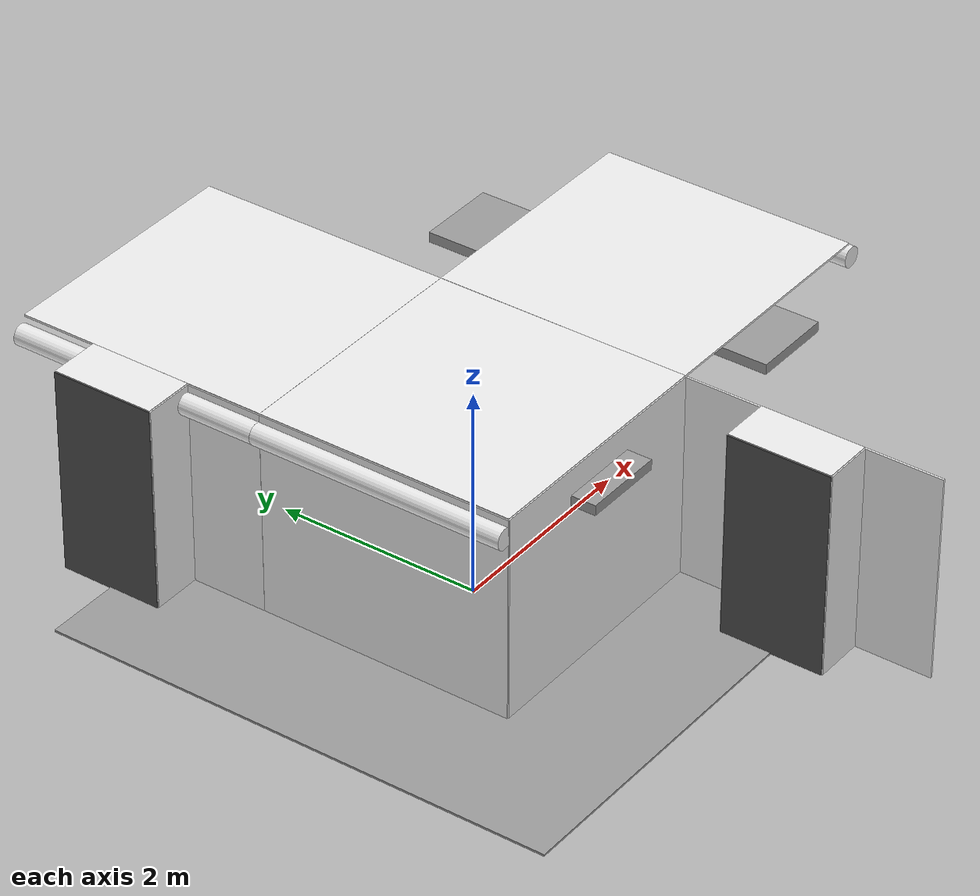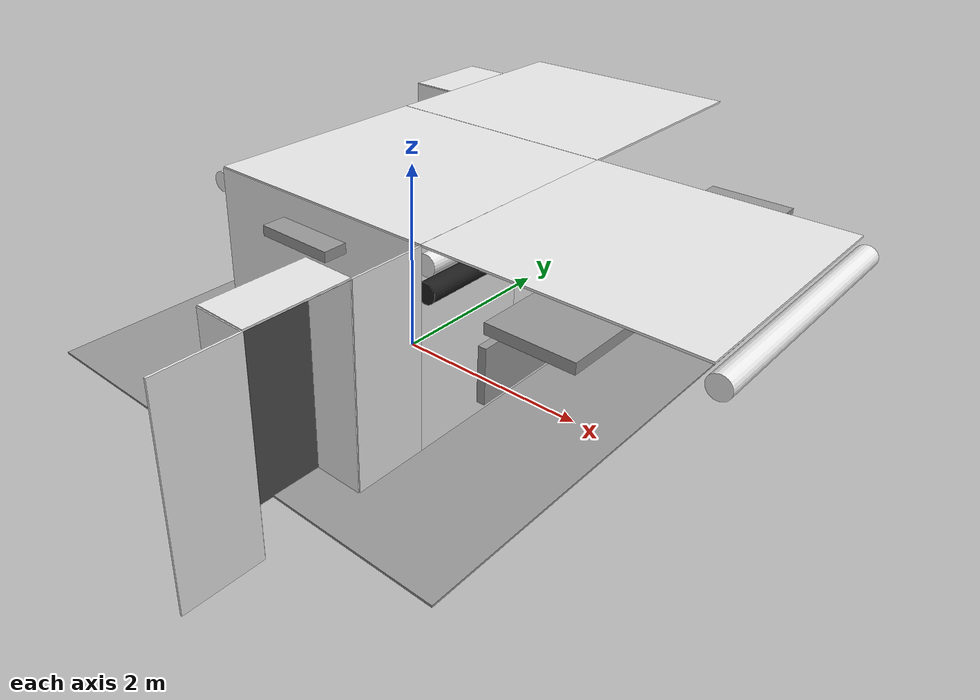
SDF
<sdf version="1.6">
 <world name="default">
  <model name="wall_back_0_0_0_0">
   <static>1</static>
   <pose>0.0 -1.25 1.0 0.0 0.0 0.0</pose>
   <link name="link">
    <collision name="collision"><geometry><box><size>2.5 0.02 2.0</size></box></geometry></collision>
    <visual name="visual">
     <material>
      <script><name>Gazebo/White</name><uri>file://media/materials/scripts/gazebo.material</uri></script>
     </material>
     <geometry><box><size>2.5 0.02 2.0</size></box></geometry>
    </visual>
   </link>
  </model>
  <model name="wall_right_0_0_0_0">
   <static>1</static>
   <pose>1.25 0.0 1.0 0.0 0.0 1.57</pose>
   <link name="link">
    <collision name="collision"><geometry><box><size>2.5 0.02 2.0</size></box></geometry></collision>
    <visual name="visual">
     <material>
      <script><name>Gazebo/White</name><uri>file://media/materials/scripts/gazebo.material</uri></script>
     </material>
     <geometry><box><size>2.5 0.02 2.0</size></box></geometry>
    </visual>
   </link>
  </model>
  <model name="wall_left_0_0_0_0">
   <static>1</static>
   <pose>-1.25 0.0 1.0 0.0 0.0 1.57</pose>
   <link name="link">
    <collision name="collision"><geometry><box><size>2.5 0.02 2.0</size></box></geometry></collision>
    <visual name="visual">
     <material>
      <script><name>Gazebo/White</name><uri>file://media/materials/scripts/gazebo.material</uri></script>
     </material>
     <geometry><box><size>2.5 0.02 2.0</size></box></geometry>
    </visual>
   </link>
  </model>
  <model name="wall_top_0_0_0_0">
   <static>1</static>
   <pose>0.0 0.0 2.0 1.57 0.0 0.0</pose>
   <link name="link">
    <collision name="collision"><geometry><box><size>2.5 0.02 2.5</size></box></geometry></collision>
    <visual name="visual">
     <material>
      <script><name>Gazebo/White</name><uri>file://media/materials/scripts/gazebo.material</uri></script>
     </material>
     <geometry><box><size>2.5 0.02 2.5</size></box></geometry>
    </visual>
   </link>
  </model>
  <model name="ceiling_1_0_0_0_0">
   <pose>0.0 0.0 1.7 0.0 0.0 0.0</pose>
   <link name="link_1">
    <visual name="visual">
     <geometry><box><size>0.8 1 0.1</size></box></geometry>
     <material>
      <script><uri>file://media/materials/scripts/gazebo.material</uri><name>Gazebo/Grey</name></script>
     </material>
    </visual>
    <collision name="collision"><geometry><box><size>0.8 1 0.1</size></box></geometry></collision>
   </link>
   <static>1</static>
  </model>
  <model name="ceiling_1_0_0_1_0">
   <pose>0.0 -1.0 1.7 0.0 0.0 0.0</pose>
   <link name="link_1">
    <visual name="visual">
     <geometry><box><size>0.8 1 0.1</size></box></geometry>
     <material>
      <script><uri>file://media/materials/scripts/gazebo.material</uri><name>Gazebo/Grey</name></script>
     </material>
    </visual>
    <collision name="collision"><geometry><box><size>0.8 1 0.1</size></box></geometry></collision>
   </link>
   <static>1</static>
  </model>
  <model name="ceiling_1_0_0_2_0">
   <pose>0.0 1.0 1.7 0.0 0.0 0.0</pose>
   <link name="link_1">
    <visual name="visual">
     <geometry><box><size>0.8 1 0.1</size></box></geometry>
     <material>
      <script><uri>file://media/materials/scripts/gazebo.material</uri><name>Gazebo/Grey</name></script>
     </material>
    </visual>
    <collision name="collision"><geometry><box><size>0.8 1 0.1</size></box></geometry></collision>
   </link>
   <static>1</static>
  </model>
  <model name="white_pipe_left_0_0_0_0">
   <static>1</static>
   <pose>0.0 0.0 1.84 0.0 0.0 0.0</pose>
   <link name="link_0">
    <visual name="visual">
     <pose>-1.3 0 0 1.57 0 0</pose>
     <geometry><cylinder><radius>0.1</radius><length>2.5</length></cylinder></geometry>
     <material>
      <script><uri>file://media/materials/scripts/gazebo.material</uri><name>Gazebo/White</name></script>
     </material>
    </visual>
    <collision name="collision">
     <pose>-1.3 0 0 1.57 0 0</pose>
     <geometry><cylinder><radius>0.1</radius><length>2.5</length></cylinder></geometry>
    </collision>
   </link>
  </model>
  <model name="white_pipe_right_0_0_0_0">
   <static>1</static>
   <pose>0.0 0.0 1.84 0.0 0.0 0.0</pose>
   <link name="link_0">
    <visual name="visual">
     <pose>1.3 0 0 1.57 0 0</pose>
     <geometry><cylinder><radius>0.1</radius><length>2.5</length></cylinder></geometry>
     <material>
      <script><uri>file://media/materials/scripts/gazebo.material</uri><name>Gazebo/White</name></script>
     </material>
    </visual>
    <collision name="collision">
     <pose>1.3 0 0 1.57 0 0</pose>
     <geometry><cylinder><radius>0.1</radius><length>2.5</length></cylinder></geometry>
    </collision>
   </link>
  </model>
  <model name="black_pipe_right_0_0_0_0">
   <static>1</static>
   <pose>0.0 0.0 1.84 0.0 0.0 0.0</pose>
   <link name="link_0">
    <visual name="visual">
     <pose>1.3 0 -0.25 1.57 0 0</pose>
     <geometry><cylinder><radius>0.1</radius><length>2.5</length></cylinder></geometry>
     <material>
      <script><uri>file://media/materials/scripts/gazebo.material</uri><name>Gazebo/Black</name></script>
     </material>
    </visual>
    <collision name="collision">
     <pose>1.3 0 -0.25 1.57 0 0</pose>
     <geometry><cylinder><radius>0.1</radius><length>2.5</length></cylinder></geometry>
    </collision>
   </link>
  </model>
  <model name="grey_pipe_right_0_0_0_0">
   <static>1</static>
   <pose>0.0 0.0 1.84 0.0 0.0 0.0</pose>
   <link name="link_0">
    <visual name="visual">
     <pose>0.7 0 0 1.57 0 0</pose>
     <geometry><cylinder><radius>0.02</radius><length>2.5</length></cylinder></geometry>
     <material>
      <script><uri>file://media/materials/scripts/gazebo.material</uri><name>Gazebo/Grey</name></script>
     </material>
    </visual>
    <collision name="collision">
     <pose>0.7 0 0 1.57 0 0</pose>
     <geometry><cylinder><radius>0.02</radius><length>2.5</length></cylinder></geometry>
    </collision>
   </link>
  </model>
  <model name="red_pipe_right_0_0_0_0">
   <static>1</static>
   <pose>0.0 0.0 1.84 0.0 0.0 0.0</pose>
   <link name="link_0">
    <visual name="visual">
     <pose>0.85 0 0 1.57 0 0</pose>
     <geometry><cylinder><radius>0.02</radius><length>2.5</length></cylinder></geometry>
     <material>
      <script><uri>file://media/materials/scripts/gazebo.material</uri><name>Gazebo/Red</name></script>
     </material>
    </visual>
    <collision name="collision">
     <pose>0.85 0 0 1.57 0 0</pose>
     <geometry><cylinder><radius>0.02</radius><length>2.5</length></cylinder></geometry>
    </collision>
   </link>
  </model>
  <model name="blue_pipe_right_0_0_0_0">
   <static>1</static>
   <pose>0.0 0.0 1.84 0.0 0.0 0.0</pose>
   <link name="link_0">
    <visual name="visual">
     <pose>1 0 0 1.57 0 0</pose>
     <geometry><cylinder><radius>0.02</radius><length>2.5</length></cylinder></geometry>
     <material>
      <script><uri>file://media/materials/scripts/gazebo.material</uri><name>Gazebo/Blue</name></script>
     </material>
    </visual>
    <collision name="collision">
     <pose>1 0 0 1.57 0 0</pose>
     <geometry><cylinder><radius>0.02</radius><length>2.5</length></cylinder></geometry>
    </collision>
   </link>
  </model>
  <model name="wall_bottom_0_0_0_0">
   <static>1</static>
   <link name="link">
    <collision name="collision"><geometry><box><size>5.0 5.0 0.02</size></box></geometry></collision>
    <visual name="visual">
     <material>
      <script><name>Gazebo/Grey</name><uri>file://media/materials/scripts/gazebo.material</uri></script>
     </material>
     <geometry><box><size>5.0 5.0 0.02</size></box></geometry>
    </visual>
   </link>
  </model>
  <model name="wall_top_0_1_0_2">
   <static>1</static>
   <pose>0.0 2.5 2.0 1.57 0.0 0.0</pose>
   <link name="link">
    <collision name="collision"><geometry><box><size>2.5 0.02 2.5</size></box></geometry></collision>
    <visual name="visual">
     <material>
      <script><name>Gazebo/White</name><uri>file://media/materials/scripts/gazebo.material</uri></script>
     </material>
     <geometry><box><size>2.5 0.02 2.5</size></box></geometry>
    </visual>
   </link>
  </model>
  <model name="ceiling_1_0_1_0_2">
   <pose>0.0 1.5 1.7 0.0 0.0 0.0</pose>
   <link name="link_1">
    <visual name="visual">
     <geometry><box><size>0.8 1 0.1</size></box></geometry>
     <material>
      <script><uri>file://media/materials/scripts/gazebo.material</uri><name>Gazebo/Grey</name></script>
     </material>
    </visual>
    <collision name="collision"><geometry><box><size>0.8 1 0.1</size></box></geometry></collision>
   </link>
   <static>1</static>
  </model>
  <model name="white_pipe_left_0_1_0_2">
   <static>1</static>
   <pose>0.0 2.5 1.84 0.0 0.0 0.0</pose>
   <link name="link_0">
    <visual name="visual">
     <pose>-1.3 0 0 1.57 0 0</pose>
     <geometry><cylinder><radius>0.1</radius><length>2.5</length></cylinder></geometry>
     <material>
      <script><uri>file://media/materials/scripts/gazebo.material</uri><name>Gazebo/White</name></script>
     </material>
    </visual>
    <collision name="collision">
     <pose>-1.3 0 0 1.57 0 0</pose>
     <geometry><cylinder><radius>0.1</radius><length>2.5</length></cylinder></geometry>
    </collision>
   </link>
  </model>
  <model name="wall_left_front_right_0_1_0_2">
   <static>1</static>
   <pose>-1.25 1.625 1.0 0.0 0.0 1.57</pose>
   <link name="link">
    <collision name="collision"><geometry><box><size>0.75 0.02 2.0</size></box></geometry></collision>
    <visual name="visual">
     <material>
      <script><name>Gazebo/White</name><uri>file://media/materials/scripts/gazebo.material</uri></script>
     </material>
     <geometry><box><size>0.75 0.02 2.0</size></box></geometry>
    </visual>
   </link>
  </model>
  <model name="wall_left_front_up_0_1_0_2">
   <static>1</static>
   <pose>-1.25 2.5 2.0 0.0 0.0 1.57</pose>
   <link name="link">
    <collision name="collision"><geometry><box><size>1.0 0.02 0.001</size></box></geometry></collision>
    <visual name="visual">
     <material>
      <script><name>Gazebo/White</name><uri>file://media/materials/scripts/gazebo.material</uri></script>
     </material>
     <geometry><box><size>1.0 0.02 0.001</size></box></geometry>
    </visual>
   </link>
  </model>
  <model name="wall_left_inside_back_0_1_0_2">
   <static>1</static>
   <pose>-1.75 2.5 1.0 0.0 0.0 1.57</pose>
   <link name="link">
    <collision name="collision"><geometry><box><size>1 0.02 2</size></box></geometry></collision>
    <visual name="visual">
     <material>
      <script><name>Gazebo/DarkGrey</name><uri>file://media/materials/scripts/gazebo.material</uri></script>
     </material>
     <geometry><box><size>1 0.02 2</size></box></geometry>
    </visual>
   </link>
  </model>
  <model name="wall_left_inside_right_0_1_0_2">
   <static>1</static>
   <pose>-1.5 2.0 1.0 0.0 0.0 0.0</pose>
   <link name="link">
    <collision name="collision"><geometry><box><size>0.5 0.02 2</size></box></geometry></collision>
    <visual name="visual">
     <material>
      <script><name>Gazebo/White</name><uri>file://media/materials/scripts/gazebo.material</uri></script>
     </material>
     <geometry><box><size>0.5 0.02 2</size></box></geometry>
    </visual>
   </link>
  </model>
  <model name="wall_left_inside_top_0_1_0_2">
   <static>1</static>
   <pose>-1.5 2.5 2.0 1.57 0.0 1.57</pose>
   <link name="link">
    <collision name="collision"><geometry><box><size>1 0.02 0.5</size></box></geometry></collision>
    <visual name="visual">
     <material>
      <script><name>Gazebo/White</name><uri>file://media/materials/scripts/gazebo.material</uri></script>
     </material>
     <geometry><box><size>1 0.02 0.5</size></box></geometry>
    </visual>
   </link>
  </model>
  <model name="ceiling_1_1_1_1_2">
   <pose>2.5 1.5 1.7 0.0 0.0 0.0</pose>
   <link name="link_1">
    <visual name="visual">
     <geometry><box><size>0.8 1 0.1</size></box></geometry>
     <material>
      <script><uri>file://media/materials/scripts/gazebo.material</uri><name>Gazebo/Grey</name></script>
     </material>
    </visual>
    <collision name="collision"><geometry><box><size>0.8 1 0.1</size></box></geometry></collision>
   </link>
   <static>1</static>
  </model>
  <model name="wall_right_1_0_0_1">
   <static>1</static>
   <pose>1.25 0.0 1.0 0.0 0.0 4.71</pose>
   <link name="link">
    <collision name="collision"><geometry><box><size>2.5 0.02 2.0</size></box></geometry></collision>
    <visual name="visual">
     <material>
      <script><name>Gazebo/White</name><uri>file://media/materials/scripts/gazebo.material</uri></script>
     </material>
     <geometry><box><size>2.5 0.02 2.0</size></box></geometry>
    </visual>
   </link>
  </model>
  <model name="wall_top_1_0_0_1">
   <static>1</static>
   <pose>2.5 0.0 2.0 1.57 0.0 3.14</pose>
   <link name="link">
    <collision name="collision"><geometry><box><size>2.5 0.02 2.5</size></box></geometry></collision>
    <visual name="visual">
     <material>
      <script><name>Gazebo/White</name><uri>file://media/materials/scripts/gazebo.material</uri></script>
     </material>
     <geometry><box><size>2.5 0.02 2.5</size></box></geometry>
    </visual>
   </link>
  </model>
  <model name="ceiling_1_1_0_0_1">
   <pose>2.5 0.0 1.7 0.0 0.0 3.14</pose>
   <link name="link_1">
    <visual name="visual">
     <geometry><box><size>0.8 1 0.1</size></box></geometry>
     <material>
      <script><uri>file://media/materials/scripts/gazebo.material</uri><name>Gazebo/Grey</name></script>
     </material>
    </visual>
    <collision name="collision"><geometry><box><size>0.8 1 0.1</size></box></geometry></collision>
   </link>
   <static>1</static>
  </model>
  <model name="ceiling_1_1_0_1_1">
   <pose>2.5 1.0 1.7 0.0 0.0 3.14</pose>
   <link name="link_1">
    <visual name="visual">
     <geometry><box><size>0.8 1 0.1</size></box></geometry>
     <material>
      <script><uri>file://media/materials/scripts/gazebo.material</uri><name>Gazebo/Grey</name></script>
     </material>
    </visual>
    <collision name="collision"><geometry><box><size>0.8 1 0.1</size></box></geometry></collision>
   </link>
   <static>1</static>
  </model>
  <model name="ceiling_1_1_0_2_1">
   <pose>2.5 -1.0 1.7 0.0 0.0 3.14</pose>
   <link name="link_1">
    <visual name="visual">
     <geometry><box><size>0.8 1 0.1</size></box></geometry>
     <material>
      <script><uri>file://media/materials/scripts/gazebo.material</uri><name>Gazebo/Grey</name></script>
     </material>
    </visual>
    <collision name="collision"><geometry><box><size>0.8 1 0.1</size></box></geometry></collision>
   </link>
   <static>1</static>
  </model>
  <model name="white_pipe_left_1_0_0_1">
   <static>1</static>
   <pose>2.5 0.0 1.84 0.0 0.0 3.14</pose>
   <link name="link_0">
    <visual name="visual">
     <pose>-1.3 0 0 1.57 0 0</pose>
     <geometry><cylinder><radius>0.1</radius><length>2.5</length></cylinder></geometry>
     <material>
      <script><uri>file://media/materials/scripts/gazebo.material</uri><name>Gazebo/White</name></script>
     </material>
    </visual>
    <collision name="collision">
     <pose>-1.3 0 0 1.57 0 0</pose>
     <geometry><cylinder><radius>0.1</radius><length>2.5</length></cylinder></geometry>
    </collision>
   </link>
  </model>
  <model name="white_pipe_right_1_0_0_1">
   <static>1</static>
   <pose>2.5 0.0 1.84 0.0 0.0 3.14</pose>
   <link name="link_0">
    <visual name="visual">
     <pose>1.3 0 0 1.57 0 0</pose>
     <geometry><cylinder><radius>0.1</radius><length>2.5</length></cylinder></geometry>
     <material>
      <script><uri>file://media/materials/scripts/gazebo.material</uri><name>Gazebo/White</name></script>
     </material>
    </visual>
    <collision name="collision">
     <pose>1.3 0 0 1.57 0 0</pose>
     <geometry><cylinder><radius>0.1</radius><length>2.5</length></cylinder></geometry>
    </collision>
   </link>
  </model>
  <model name="black_pipe_right_1_0_0_1">
   <static>1</static>
   <pose>2.5 0.0 1.84 0.0 0.0 3.14</pose>
   <link name="link_0">
    <visual name="visual">
     <pose>1.3 0 -0.25 1.57 0 0</pose>
     <geometry><cylinder><radius>0.1</radius><length>2.5</length></cylinder></geometry>
     <material>
      <script><uri>file://media/materials/scripts/gazebo.material</uri><name>Gazebo/Black</name></script>
     </material>
    </visual>
    <collision name="collision">
     <pose>1.3 0 -0.25 1.57 0 0</pose>
     <geometry><cylinder><radius>0.1</radius><length>2.5</length></cylinder></geometry>
    </collision>
   </link>
  </model>
  <model name="panel_1_0_0_1">
   <static>1</static>
   <pose>1.25 0.0 0.44 0.0 0.0 3.14</pose>
   <link name="link">
    <collision name="collision"><geometry><box><size>0.2 1 0.6</size></box></geometry></collision>
    <visual name="visual">
     <material>
      <script><name>Gazebo/Grey</name><uri>file://media/materials/scripts/gazebo.material</uri></script>
     </material>
     <geometry><box><size>0.2 1 0.6</size></box></geometry>
    </visual>
   </link>
  </model>
  <model name="wall_right_front_left_1_-1_0_3">
   <static>1</static>
   <pose>1.25 -3.375 1.0 0.0 0.0 4.71</pose>
   <link name="link">
    <collision name="collision"><geometry><box><size>0.75 0.02 2.0</size></box></geometry></collision>
    <visual name="visual">
     <material>
      <script><name>Gazebo/White</name><uri>file://media/materials/scripts/gazebo.material</uri></script>
     </material>
     <geometry><box><size>0.75 0.02 2.0</size></box></geometry>
    </visual>
   </link>
  </model>
  <model name="wall_right_front_right_1_-1_0_3">
   <static>1</static>
   <pose>1.25 -1.625 1.0 0.0 0.0 4.71</pose>
   <link name="link">
    <collision name="collision"><geometry><box><size>0.75 0.02 2.0</size></box></geometry></collision>
    <visual name="visual">
     <material>
      <script><name>Gazebo/White</name><uri>file://media/materials/scripts/gazebo.material</uri></script>
     </material>
     <geometry><box><size>0.75 0.02 2.0</size></box></geometry>
    </visual>
   </link>
  </model>
  <model name="wall_right_front_up_1_-1_0_3">
   <static>1</static>
   <pose>1.25 -2.5 2.0 0.0 0.0 4.71</pose>
   <link name="link">
    <collision name="collision"><geometry><box><size>1.0 0.02 0.001</size></box></geometry></collision>
    <visual name="visual">
     <material>
      <script><name>Gazebo/White</name><uri>file://media/materials/scripts/gazebo.material</uri></script>
     </material>
     <geometry><box><size>1.0 0.02 0.001</size></box></geometry>
    </visual>
   </link>
  </model>
  <model name="wall_right_inside_back_1_-1_0_3">
   <static>1</static>
   <pose>0.75 -2.5 1.0 0.0 0.0 4.71</pose>
   <link name="link">
    <collision name="collision"><geometry><box><size>1 0.02 2</size></box></geometry></collision>
    <visual name="visual">
     <material>
      <script><name>Gazebo/DarkGrey</name><uri>file://media/materials/scripts/gazebo.material</uri></script>
     </material>
     <geometry><box><size>1 0.02 2</size></box></geometry>
    </visual>
   </link>
  </model>
  <model name="wall_right_inside_left_1_-1_0_3">
   <static>1</static>
   <pose>1.0 -3.0 1.0 0.0 0.0 3.14</pose>
   <link name="link">
    <collision name="collision"><geometry><box><size>0.5 0.02 2</size></box></geometry></collision>
    <visual name="visual">
     <material>
      <script><name>Gazebo/White</name><uri>file://media/materials/scripts/gazebo.material</uri></script>
     </material>
     <geometry><box><size>0.5 0.02 2</size></box></geometry>
    </visual>
   </link>
  </model>
  <model name="wall_right_inside_right_1_-1_0_3">
   <static>1</static>
   <pose>1.0 -2.0 1.0 0.0 0.0 3.14</pose>
   <link name="link">
    <collision name="collision"><geometry><box><size>0.5 0.02 2</size></box></geometry></collision>
    <visual name="visual">
     <material>
      <script><name>Gazebo/White</name><uri>file://media/materials/scripts/gazebo.material</uri></script>
     </material>
     <geometry><box><size>0.5 0.02 2</size></box></geometry>
    </visual>
   </link>
  </model>
  <model name="wall_right_inside_top_1_-1_0_3">
   <static>1</static>
   <pose>1.0 -2.5 2.0 1.57 0.0 4.71</pose>
   <link name="link">
    <collision name="collision"><geometry><box><size>1 0.02 0.5</size></box></geometry></collision>
    <visual name="visual">
     <material>
      <script><name>Gazebo/White</name><uri>file://media/materials/scripts/gazebo.material</uri></script>
     </material>
     <geometry><box><size>1 0.02 0.5</size></box></geometry>
    </visual>
   </link>
  </model>
 </world>
</sdf>
